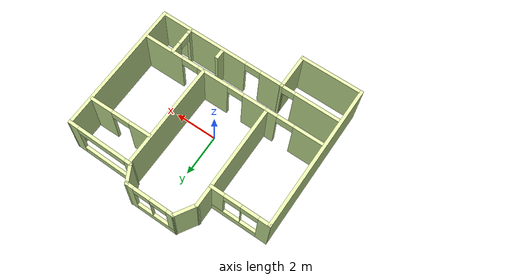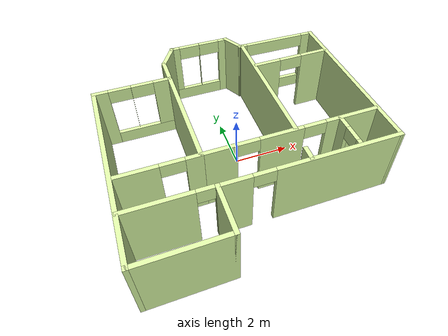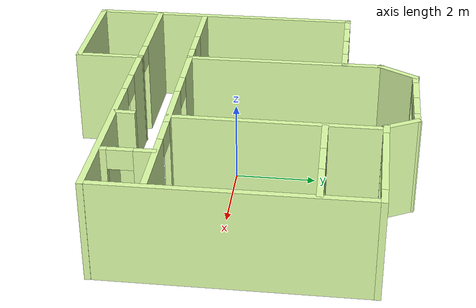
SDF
<?xml version="1.0" ?>
<sdf version="1.6">
  <world name="default">
    <include>
      <uri>file:///home/anastasiia/Documents/flat_model/model.sdf</uri>
    </include>
  </world>
</sdf>

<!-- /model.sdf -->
<sdf version='1.7'>
  <model name='flat_model'>
    <pose>0.096668 0.042419 0 0 -0 0</pose>
    <link name='Wall_100'>
      <collision name='Wall_100_Collision'>
        <geometry>
          <box>
            <size>0.555985 0.15 2.5</size>
          </box>
        </geometry>
        <pose>0 0 1.25 0 -0 0</pose>
      </collision>
      <visual name='Wall_100_Visual'>
        <pose>0 0 1.25 0 -0 0</pose>
        <geometry>
          <box>
            <size>0.555985 0.15 2.5</size>
          </box>
        </geometry>
        <material>
          <script>
            <uri>file://media/materials/scripts/gazebo.material</uri>
            <name>Gazebo/Grey</name>
          </script>
          <ambient>0.866667 1 0.654902 1</ambient>
        </material>
        <meta>
          <layer>0</layer>
        </meta>
      </visual>
      <pose>1.34572 -2.52518 0 0 -0 -1.58488</pose>
    </link>
    <link name='Wall_102'>
      <pose>-3.05371 -2.7276 0 0 -0 3.13689</pose>
      <visual name='Wall_102_Visual_0'>
        <pose>-1.41897 0 1.25 0 -0 0</pose>
        <geometry>
          <box>
            <size>0.106546 0.15 2.5</size>
          </box>
        </geometry>
        <material>
          <script>
            <uri>file://media/materials/scripts/gazebo.material</uri>
            <name>Gazebo/Grey</name>
          </script>
          <ambient>0.866667 1 0.654902 1</ambient>
        </material>
        <meta>
          <layer>0</layer>
        </meta>
      </visual>
      <collision name='Wall_102_Collision_0'>
        <geometry>
          <box>
            <size>0.106546 0.15 2.5</size>
          </box>
        </geometry>
        <pose>-1.41897 0 1.25 0 -0 0</pose>
      </collision>
      <visual name='Wall_102_Visual_1'>
        <pose>0.345424 0 1.25 0 -0 0</pose>
        <geometry>
          <box>
            <size>2.25363 0.15 2.5</size>
          </box>
        </geometry>
        <material>
          <script>
            <uri>file://media/materials/scripts/gazebo.material</uri>
            <name>Gazebo/Grey</name>
          </script>
          <ambient>0.866667 1 0.654902 1</ambient>
        </material>
        <meta>
          <layer>0</layer>
        </meta>
      </visual>
      <collision name='Wall_102_Collision_1'>
        <geometry>
          <box>
            <size>2.25363 0.15 2.5</size>
          </box>
        </geometry>
        <pose>0.345424 0 1.25 0 -0 0</pose>
      </collision>
      <visual name='Wall_102_Visual_2'>
        <pose>-1.07354 0 2.25 0 -0 0</pose>
        <geometry>
          <box>
            <size>0.584303 0.15 0.5</size>
          </box>
        </geometry>
        <material>
          <script>
            <uri>file://media/materials/scripts/gazebo.material</uri>
            <name>Gazebo/Grey</name>
          </script>
          <ambient>0.866667 1 0.654902 1</ambient>
        </material>
        <meta>
          <layer>0</layer>
        </meta>
      </visual>
      <collision name='Wall_102_Collision_2'>
        <geometry>
          <box>
            <size>0.584303 0.15 0.5</size>
          </box>
        </geometry>
        <pose>-1.07354 0 2.25 0 -0 0</pose>
      </collision>
    </link>
    <link name='Wall_62'>
      <collision name='Wall_62_Collision'>
        <geometry>
          <box>
            <size>7 0.15 2.5</size>
          </box>
        </geometry>
        <pose>0 0 1.25 0 -0 0</pose>
      </collision>
      <visual name='Wall_62_Visual'>
        <pose>0 0 1.25 0 -0 0</pose>
        <geometry>
          <box>
            <size>7 0.15 2.5</size>
          </box>
        </geometry>
        <material>
          <script>
            <uri>file://media/materials/scripts/gazebo.material</uri>
            <name>Gazebo/Grey</name>
          </script>
          <ambient>0.866667 1 0.654902 1</ambient>
        </material>
        <meta>
          <layer>0</layer>
        </meta>
      </visual>
      <pose>-4.48201 -0.921322 0 0 -0 -1.5708</pose>
    </link>
    <link name='Wall_63'>
      <collision name='Wall_63_Collision'>
        <geometry>
          <box>
            <size>3 0.15 2.5</size>
          </box>
        </geometry>
        <pose>0 0 1.25 0 -0 0</pose>
      </collision>
      <visual name='Wall_63_Visual'>
        <pose>0 0 1.25 0 -0 0</pose>
        <geometry>
          <box>
            <size>3 0.15 2.5</size>
          </box>
        </geometry>
        <material>
          <script>
            <uri>file://media/materials/scripts/gazebo.material</uri>
            <name>Gazebo/Grey</name>
          </script>
          <ambient>0.866667 1 0.654902 1</ambient>
        </material>
        <meta>
          <layer>0</layer>
        </meta>
      </visual>
      <pose>-3.05701 -4.34632 0 0 -0 0</pose>
    </link>
    <link name='Wall_64'>
      <collision name='Wall_64_Collision'>
        <geometry>
          <box>
            <size>1.75 0.15 2.5</size>
          </box>
        </geometry>
        <pose>0 0 1.25 0 -0 0</pose>
      </collision>
      <visual name='Wall_64_Visual'>
        <pose>0 0 1.25 0 -0 0</pose>
        <geometry>
          <box>
            <size>1.75 0.15 2.5</size>
          </box>
        </geometry>
        <material>
          <script>
            <uri>file://media/materials/scripts/gazebo.material</uri>
            <name>Gazebo/Grey</name>
          </script>
          <ambient>0.866667 1 0.654902 1</ambient>
        </material>
        <meta>
          <layer>0</layer>
        </meta>
      </visual>
      <pose>-1.63201 -3.54632 0 0 -0 1.5708</pose>
    </link>
    <link name='Wall_65'>
      <pose>1.4246 -2.76285 0 0 -0 -0.005408</pose>
      <visual name='Wall_65_Visual_0'>
        <pose>-2.55762 0 1.25 0 -0 0</pose>
        <geometry>
          <box>
            <size>1.14808 0.15 2.5</size>
          </box>
        </geometry>
        <material>
          <script>
            <uri>file://media/materials/scripts/gazebo.material</uri>
            <name>Gazebo/Grey</name>
          </script>
          <ambient>0.866667 1 0.654902 1</ambient>
        </material>
        <meta>
          <layer>0</layer>
        </meta>
      </visual>
      <collision name='Wall_65_Collision_0'>
        <geometry>
          <box>
            <size>1.14808 0.15 2.5</size>
          </box>
        </geometry>
        <pose>-2.55762 0 1.25 0 -0 0</pose>
      </collision>
      <visual name='Wall_65_Visual_1'>
        <pose>0.945434 0 1.25 0 -0 0</pose>
        <geometry>
          <box>
            <size>4.37245 0.15 2.5</size>
          </box>
        </geometry>
        <material>
          <script>
            <uri>file://media/materials/scripts/gazebo.material</uri>
            <name>Gazebo/Grey</name>
          </script>
          <ambient>0.866667 1 0.654902 1</ambient>
        </material>
        <meta>
          <layer>0</layer>
        </meta>
      </visual>
      <collision name='Wall_65_Collision_1'>
        <geometry>
          <box>
            <size>4.37245 0.15 2.5</size>
          </box>
        </geometry>
        <pose>0.945434 0 1.25 0 -0 0</pose>
      </collision>
      <visual name='Wall_65_Visual_2'>
        <pose>-1.61218 0 2.25 0 -0 0</pose>
        <geometry>
          <box>
            <size>0.742786 0.15 0.5</size>
          </box>
        </geometry>
        <material>
          <script>
            <uri>file://media/materials/scripts/gazebo.material</uri>
            <name>Gazebo/Grey</name>
          </script>
          <ambient>0.866667 1 0.654902 1</ambient>
        </material>
        <meta>
          <layer>0</layer>
        </meta>
      </visual>
      <collision name='Wall_65_Collision_2'>
        <geometry>
          <box>
            <size>0.742786 0.15 0.5</size>
          </box>
        </geometry>
        <pose>-1.61218 0 2.25 0 -0 0</pose>
      </collision>
    </link>
    <link name='Wall_66'>
      <collision name='Wall_66_Collision'>
        <geometry>
          <box>
            <size>6.5 0.15 2.5</size>
          </box>
        </geometry>
        <pose>0 0 1.25 0 -0 0</pose>
      </collision>
      <visual name='Wall_66_Visual'>
        <pose>0 0 1.25 0 -0 0</pose>
        <geometry>
          <box>
            <size>6.5 0.15 2.5</size>
          </box>
        </geometry>
        <material>
          <script>
            <uri>file://media/materials/scripts/gazebo.material</uri>
            <name>Gazebo/Grey</name>
          </script>
          <ambient>0.866667 1 0.654902 1</ambient>
        </material>
        <meta>
          <layer>0</layer>
        </meta>
      </visual>
      <pose>4.4746 0.395616 0 0 -0 1.5708</pose>
    </link>
    <link name='Wall_67'>
      <pose>2.9246 3.58715 0 0 -0 3.13097</pose>
      <visual name='Wall_67_Visual_0'>
        <pose>-1.37519 0 1.25 0 -0 0</pose>
        <geometry>
          <box>
            <size>0.513019 0.15 2.5</size>
          </box>
        </geometry>
        <material>
          <script>
            <uri>file://media/materials/scripts/gazebo.material</uri>
            <name>Gazebo/Grey</name>
          </script>
          <ambient>0.866667 1 0.654902 1</ambient>
        </material>
        <meta>
          <layer>0</layer>
        </meta>
      </visual>
      <collision name='Wall_67_Collision_0'>
        <geometry>
          <box>
            <size>0.513019 0.15 2.5</size>
          </box>
        </geometry>
        <pose>-1.37519 0 1.25 0 -0 0</pose>
      </collision>
      <visual name='Wall_67_Visual_1'>
        <pose>0.256509 0 0.25 0 -0 0</pose>
        <geometry>
          <box>
            <size>2.75038 0.15 0.5</size>
          </box>
        </geometry>
        <material>
          <script>
            <uri>file://media/materials/scripts/gazebo.material</uri>
            <name>Gazebo/Grey</name>
          </script>
          <ambient>0.866667 1 0.654902 1</ambient>
        </material>
        <meta>
          <layer>0</layer>
        </meta>
      </visual>
      <collision name='Wall_67_Collision_1'>
        <geometry>
          <box>
            <size>2.75038 0.15 0.5</size>
          </box>
        </geometry>
        <pose>0.256509 0 0.25 0 -0 0</pose>
      </collision>
      <visual name='Wall_67_Visual_2'>
        <pose>1.45151 0 1.5 0 -0 0</pose>
        <geometry>
          <box>
            <size>0.360382 0.15 2</size>
          </box>
        </geometry>
        <material>
          <script>
            <uri>file://media/materials/scripts/gazebo.material</uri>
            <name>Gazebo/Grey</name>
          </script>
          <ambient>0.866667 1 0.654902 1</ambient>
        </material>
        <meta>
          <layer>0</layer>
        </meta>
      </visual>
      <collision name='Wall_67_Collision_2'>
        <geometry>
          <box>
            <size>0.360382 0.15 2</size>
          </box>
        </geometry>
        <pose>1.45151 0 1.5 0 -0 0</pose>
      </collision>
      <visual name='Wall_67_Visual_3'>
        <pose>0.076318 0 2.25 0 -0 0</pose>
        <geometry>
          <box>
            <size>2.39 0.15 0.5</size>
          </box>
        </geometry>
        <material>
          <script>
            <uri>file://media/materials/scripts/gazebo.material</uri>
            <name>Gazebo/Grey</name>
          </script>
          <ambient>0.866667 1 0.654902 1</ambient>
        </material>
        <meta>
          <layer>0</layer>
        </meta>
      </visual>
      <collision name='Wall_67_Collision_3'>
        <geometry>
          <box>
            <size>2.39 0.15 0.5</size>
          </box>
        </geometry>
        <pose>0.076318 0 2.25 0 -0 0</pose>
      </collision>
    </link>
    <link name='Wall_68'>
      <collision name='Wall_68_Collision'>
        <geometry>
          <box>
            <size>0.95923 0.15 2.5</size>
          </box>
        </geometry>
        <pose>0 0 1.25 0 -0 0</pose>
      </collision>
      <visual name='Wall_68_Visual'>
        <pose>0 0 1.25 0 -0 0</pose>
        <geometry>
          <box>
            <size>0.95923 0.15 2.5</size>
          </box>
        </geometry>
        <material>
          <script>
            <uri>file://media/materials/scripts/gazebo.material</uri>
            <name>Gazebo/Grey</name>
          </script>
          <ambient>0.866667 1 0.654902 1</ambient>
        </material>
        <meta>
          <layer>0</layer>
        </meta>
      </visual>
      <pose>1.17826 3.96105 0 0 -0 2.05886</pose>
    </link>
    <link name='Wall_69'>
      <pose>-0.129251 4.31842 0 0 -0 3.14159</pose>
      <visual name='Wall_69_Visual_0'>
        <pose>-0.988603 0 1.25 0 -0 0</pose>
        <geometry>
          <box>
            <size>0.408348 0.15 2.5</size>
          </box>
        </geometry>
        <material>
          <script>
            <uri>file://media/materials/scripts/gazebo.material</uri>
            <name>Gazebo/Grey</name>
          </script>
          <ambient>0.866667 1 0.654902 1</ambient>
        </material>
        <meta>
          <layer>0</layer>
        </meta>
      </visual>
      <collision name='Wall_69_Collision_0'>
        <geometry>
          <box>
            <size>0.408348 0.15 2.5</size>
          </box>
        </geometry>
        <pose>-0.988603 0 1.25 0 -0 0</pose>
      </collision>
      <visual name='Wall_69_Visual_1'>
        <pose>0.204174 0 0.25 0 -0 0</pose>
        <geometry>
          <box>
            <size>1.97721 0.15 0.5</size>
          </box>
        </geometry>
        <material>
          <script>
            <uri>file://media/materials/scripts/gazebo.material</uri>
            <name>Gazebo/Grey</name>
          </script>
          <ambient>0.866667 1 0.654902 1</ambient>
        </material>
        <meta>
          <layer>0</layer>
        </meta>
      </visual>
      <collision name='Wall_69_Collision_1'>
        <geometry>
          <box>
            <size>1.97721 0.15 0.5</size>
          </box>
        </geometry>
        <pose>0.204174 0 0.25 0 -0 0</pose>
      </collision>
      <visual name='Wall_69_Visual_2'>
        <pose>0.017635 0 1.5 0 -0 0</pose>
        <geometry>
          <box>
            <size>0.004129 0.15 2</size>
          </box>
        </geometry>
        <material>
          <script>
            <uri>file://media/materials/scripts/gazebo.material</uri>
            <name>Gazebo/Grey</name>
          </script>
          <ambient>0.866667 1 0.654902 1</ambient>
        </material>
        <meta>
          <layer>0</layer>
        </meta>
      </visual>
      <collision name='Wall_69_Collision_2'>
        <geometry>
          <box>
            <size>0.004129 0.15 2</size>
          </box>
        </geometry>
        <pose>0.017635 0 1.5 0 -0 0</pose>
      </collision>
      <visual name='Wall_69_Visual_3'>
        <pose>1.00624 0 1.5 0 -0 0</pose>
        <geometry>
          <box>
            <size>0.373078 0.15 2</size>
          </box>
        </geometry>
        <material>
          <script>
            <uri>file://media/materials/scripts/gazebo.material</uri>
            <name>Gazebo/Grey</name>
          </script>
          <ambient>0.866667 1 0.654902 1</ambient>
        </material>
        <meta>
          <layer>0</layer>
        </meta>
      </visual>
      <collision name='Wall_69_Collision_3'>
        <geometry>
          <box>
            <size>0.373078 0.15 2</size>
          </box>
        </geometry>
        <pose>1.00624 0 1.5 0 -0 0</pose>
      </collision>
      <visual name='Wall_69_Visual_4'>
        <pose>-0.384429 0 2.25 0 -0 0</pose>
        <geometry>
          <box>
            <size>0.8 0.15 0.5</size>
          </box>
        </geometry>
        <material>
          <script>
            <uri>file://media/materials/scripts/gazebo.material</uri>
            <name>Gazebo/Grey</name>
          </script>
          <ambient>0.866667 1 0.654902 1</ambient>
        </material>
        <meta>
          <layer>0</layer>
        </meta>
      </visual>
      <collision name='Wall_69_Collision_4'>
        <geometry>
          <box>
            <size>0.8 0.15 0.5</size>
          </box>
        </geometry>
        <pose>-0.384429 0 2.25 0 -0 0</pose>
      </collision>
      <visual name='Wall_69_Visual_5'>
        <pose>0.4197 0 2.25 0 -0 0</pose>
        <geometry>
          <box>
            <size>0.8 0.15 0.5</size>
          </box>
        </geometry>
        <material>
          <script>
            <uri>file://media/materials/scripts/gazebo.material</uri>
            <name>Gazebo/Grey</name>
          </script>
          <ambient>0.866667 1 0.654902 1</ambient>
        </material>
        <meta>
          <layer>0</layer>
        </meta>
      </visual>
      <collision name='Wall_69_Collision_5'>
        <geometry>
          <box>
            <size>0.8 0.15 0.5</size>
          </box>
        </geometry>
        <pose>0.4197 0 2.25 0 -0 0</pose>
      </collision>
    </link>
    <link name='Wall_70'>
      <collision name='Wall_70_Collision'>
        <geometry>
          <box>
            <size>1.14683 0.15 2.5</size>
          </box>
        </geometry>
        <pose>0 0 1.25 0 -0 0</pose>
      </collision>
      <visual name='Wall_70_Visual'>
        <pose>0 0 1.25 0 -0 0</pose>
        <geometry>
          <box>
            <size>1.14683 0.15 2.5</size>
          </box>
        </geometry>
        <material>
          <script>
            <uri>file://media/materials/scripts/gazebo.material</uri>
            <name>Gazebo/Grey</name>
          </script>
          <ambient>0.866667 1 0.654902 1</ambient>
        </material>
        <meta>
          <layer>0</layer>
        </meta>
      </visual>
      <pose>-1.50346 3.89104 0 0 -0 -2.11122</pose>
    </link>
    <link name='Wall_71'>
      <collision name='Wall_71_Collision'>
        <geometry>
          <box>
            <size>5.05896 0.15 2.5</size>
          </box>
        </geometry>
        <pose>0 0 1.25 0 -0 0</pose>
      </collision>
      <visual name='Wall_71_Visual'>
        <pose>0 0 1.25 0 -0 0</pose>
        <geometry>
          <box>
            <size>5.05896 0.15 2.5</size>
          </box>
        </geometry>
        <material>
          <script>
            <uri>file://media/materials/scripts/gazebo.material</uri>
            <name>Gazebo/Grey</name>
          </script>
          <ambient>0.866667 1 0.654902 1</ambient>
        </material>
        <meta>
          <layer>0</layer>
        </meta>
      </visual>
      <pose>-1.74984 1.00919 0 0 -0 -1.5667</pose>
    </link>
    <link name='Wall_74'>
      <pose>-3.03978 -1.45533 0 0 -0 3.14159</pose>
      <visual name='Wall_74_Visual_0'>
        <pose>-1.0907 0 1.25 0 -0 0</pose>
        <geometry>
          <box>
            <size>0.568599 0.15 2.5</size>
          </box>
        </geometry>
        <material>
          <script>
            <uri>file://media/materials/scripts/gazebo.material</uri>
            <name>Gazebo/Grey</name>
          </script>
          <ambient>0.866667 1 0.654902 1</ambient>
        </material>
        <meta>
          <layer>0</layer>
        </meta>
      </visual>
      <collision name='Wall_74_Collision_0'>
        <geometry>
          <box>
            <size>0.568599 0.15 2.5</size>
          </box>
        </geometry>
        <pose>-1.0907 0 1.25 0 -0 0</pose>
      </collision>
      <visual name='Wall_74_Visual_1'>
        <pose>0.68363 0 1.25 0 -0 0</pose>
        <geometry>
          <box>
            <size>1.38274 0.15 2.5</size>
          </box>
        </geometry>
        <material>
          <script>
            <uri>file://media/materials/scripts/gazebo.material</uri>
            <name>Gazebo/Grey</name>
          </script>
          <ambient>0.866667 1 0.654902 1</ambient>
        </material>
        <meta>
          <layer>0</layer>
        </meta>
      </visual>
      <collision name='Wall_74_Collision_1'>
        <geometry>
          <box>
            <size>1.38274 0.15 2.5</size>
          </box>
        </geometry>
        <pose>0.68363 0 1.25 0 -0 0</pose>
      </collision>
      <visual name='Wall_74_Visual_2'>
        <pose>-0.407071 0 2.25 0 -0 0</pose>
        <geometry>
          <box>
            <size>0.79866 0.15 0.5</size>
          </box>
        </geometry>
        <material>
          <script>
            <uri>file://media/materials/scripts/gazebo.material</uri>
            <name>Gazebo/Grey</name>
          </script>
          <ambient>0.866667 1 0.654902 1</ambient>
        </material>
        <meta>
          <layer>0</layer>
        </meta>
      </visual>
      <collision name='Wall_74_Collision_2'>
        <geometry>
          <box>
            <size>0.79866 0.15 0.5</size>
          </box>
        </geometry>
        <pose>-0.407071 0 2.25 0 -0 0</pose>
      </collision>
    </link>
    <link name='Wall_78'>
      <pose>-3.13271 2.53356 0 0 -0 0.001845</pose>
      <visual name='Wall_78_Visual_0'>
        <pose>-1.13854 0 1.25 0 -0 0</pose>
        <geometry>
          <box>
            <size>0.567613 0.15 2.5</size>
          </box>
        </geometry>
        <material>
          <script>
            <uri>file://media/materials/scripts/gazebo.material</uri>
            <name>Gazebo/Grey</name>
          </script>
          <ambient>0.866667 1 0.654902 1</ambient>
        </material>
        <meta>
          <layer>0</layer>
        </meta>
      </visual>
      <collision name='Wall_78_Collision_0'>
        <geometry>
          <box>
            <size>0.567613 0.15 2.5</size>
          </box>
        </geometry>
        <pose>-1.13854 0 1.25 0 -0 0</pose>
      </collision>
      <visual name='Wall_78_Visual_1'>
        <pose>0.283806 0 0.25 0 -0 0</pose>
        <geometry>
          <box>
            <size>2.27709 0.15 0.5</size>
          </box>
        </geometry>
        <material>
          <script>
            <uri>file://media/materials/scripts/gazebo.material</uri>
            <name>Gazebo/Grey</name>
          </script>
          <ambient>0.866667 1 0.654902 1</ambient>
        </material>
        <meta>
          <layer>0</layer>
        </meta>
      </visual>
      <collision name='Wall_78_Collision_1'>
        <geometry>
          <box>
            <size>2.27709 0.15 0.5</size>
          </box>
        </geometry>
        <pose>0.283806 0 0.25 0 -0 0</pose>
      </collision>
      <visual name='Wall_78_Visual_2'>
        <pose>-0.051735 0 1.5 0 -0 0</pose>
        <geometry>
          <box>
            <size>0.006006 0.15 2</size>
          </box>
        </geometry>
        <material>
          <script>
            <uri>file://media/materials/scripts/gazebo.material</uri>
            <name>Gazebo/Grey</name>
          </script>
          <ambient>0.866667 1 0.654902 1</ambient>
        </material>
        <meta>
          <layer>0</layer>
        </meta>
      </visual>
      <collision name='Wall_78_Collision_2'>
        <geometry>
          <box>
            <size>0.006006 0.15 2</size>
          </box>
        </geometry>
        <pose>-0.051735 0 1.5 0 -0 0</pose>
      </collision>
      <visual name='Wall_78_Visual_3'>
        <pose>1.08681 0 1.5 0 -0 0</pose>
        <geometry>
          <box>
            <size>0.671083 0.15 2</size>
          </box>
        </geometry>
        <material>
          <script>
            <uri>file://media/materials/scripts/gazebo.material</uri>
            <name>Gazebo/Grey</name>
          </script>
          <ambient>0.866667 1 0.654902 1</ambient>
        </material>
        <meta>
          <layer>0</layer>
        </meta>
      </visual>
      <collision name='Wall_78_Collision_3'>
        <geometry>
          <box>
            <size>0.671083 0.15 2</size>
          </box>
        </geometry>
        <pose>1.08681 0 1.5 0 -0 0</pose>
      </collision>
      <visual name='Wall_78_Visual_4'>
        <pose>-0.454738 0 2.25 0 -0 0</pose>
        <geometry>
          <box>
            <size>0.8 0.15 0.5</size>
          </box>
        </geometry>
        <material>
          <script>
            <uri>file://media/materials/scripts/gazebo.material</uri>
            <name>Gazebo/Grey</name>
          </script>
          <ambient>0.866667 1 0.654902 1</ambient>
        </material>
        <meta>
          <layer>0</layer>
        </meta>
      </visual>
      <collision name='Wall_78_Collision_4'>
        <geometry>
          <box>
            <size>0.8 0.15 0.5</size>
          </box>
        </geometry>
        <pose>-0.454738 0 2.25 0 -0 0</pose>
      </collision>
      <visual name='Wall_78_Visual_5'>
        <pose>0.351268 0 2.25 0 -0 0</pose>
        <geometry>
          <box>
            <size>0.8 0.15 0.5</size>
          </box>
        </geometry>
        <material>
          <script>
            <uri>file://media/materials/scripts/gazebo.material</uri>
            <name>Gazebo/Grey</name>
          </script>
          <ambient>0.866667 1 0.654902 1</ambient>
        </material>
        <meta>
          <layer>0</layer>
        </meta>
      </visual>
      <collision name='Wall_78_Collision_5'>
        <geometry>
          <box>
            <size>0.8 0.15 0.5</size>
          </box>
        </geometry>
        <pose>0.351268 0 2.25 0 -0 0</pose>
      </collision>
    </link>
    <link name='Wall_87'>
      <collision name='Wall_87_Collision'>
        <geometry>
          <box>
            <size>5.17235 0.15 2.5</size>
          </box>
        </geometry>
        <pose>0 0 1.25 0 -0 0</pose>
      </collision>
      <visual name='Wall_87_Visual'>
        <pose>0 0 1.25 0 -0 0</pose>
        <geometry>
          <box>
            <size>5.17235 0.15 2.5</size>
          </box>
        </geometry>
        <material>
          <script>
            <uri>file://media/materials/scripts/gazebo.material</uri>
            <name>Gazebo/Grey</name>
          </script>
          <ambient>0.866667 1 0.654902 1</ambient>
        </material>
        <meta>
          <layer>0</layer>
        </meta>
      </visual>
      <pose>1.43672 1.08795 0 0 -0 -1.57425</pose>
    </link>
    <link name='Wall_90'>
      <pose>2.96267 2.22496 0 0 -0 0.011952</pose>
      <visual name='Wall_90_Visual_0'>
        <pose>-0.988405 0 1.25 0 -0 0</pose>
        <geometry>
          <box>
            <size>1.0599 0.15 2.5</size>
          </box>
        </geometry>
        <material>
          <script>
            <uri>file://media/materials/scripts/gazebo.material</uri>
            <name>Gazebo/Grey</name>
          </script>
          <ambient>0.866667 1 0.654902 1</ambient>
        </material>
        <meta>
          <layer>0</layer>
        </meta>
      </visual>
      <collision name='Wall_90_Collision_0'>
        <geometry>
          <box>
            <size>1.0599 0.15 2.5</size>
          </box>
        </geometry>
        <pose>-0.988405 0 1.25 0 -0 0</pose>
      </collision>
      <visual name='Wall_90_Visual_1'>
        <pose>0.968548 0 1.25 0 -0 0</pose>
        <geometry>
          <box>
            <size>1.09961 0.15 2.5</size>
          </box>
        </geometry>
        <material>
          <script>
            <uri>file://media/materials/scripts/gazebo.material</uri>
            <name>Gazebo/Grey</name>
          </script>
          <ambient>0.866667 1 0.654902 1</ambient>
        </material>
        <meta>
          <layer>0</layer>
        </meta>
      </visual>
      <collision name='Wall_90_Collision_1'>
        <geometry>
          <box>
            <size>1.09961 0.15 2.5</size>
          </box>
        </geometry>
        <pose>0.968548 0 1.25 0 -0 0</pose>
      </collision>
      <visual name='Wall_90_Visual_2'>
        <pose>-0.019857 0 2.25 0 -0 0</pose>
        <geometry>
          <box>
            <size>0.8772 0.15 0.5</size>
          </box>
        </geometry>
        <material>
          <script>
            <uri>file://media/materials/scripts/gazebo.material</uri>
            <name>Gazebo/Grey</name>
          </script>
          <ambient>0.866667 1 0.654902 1</ambient>
        </material>
        <meta>
          <layer>0</layer>
        </meta>
      </visual>
      <collision name='Wall_90_Collision_2'>
        <geometry>
          <box>
            <size>0.8772 0.15 0.5</size>
          </box>
        </geometry>
        <pose>-0.019857 0 2.25 0 -0 0</pose>
      </collision>
    </link>
    <link name='Wall_96'>
      <pose>1.35506 -1.44682 0 0 -0 0.001901</pose>
      <visual name='Wall_96_Visual_0'>
        <pose>-2.52094 0 1.25 0 -0 0</pose>
        <geometry>
          <box>
            <size>1.19148 0.15 2.5</size>
          </box>
        </geometry>
        <material>
          <script>
            <uri>file://media/materials/scripts/gazebo.material</uri>
            <name>Gazebo/Grey</name>
          </script>
          <ambient>0.866667 1 0.654902 1</ambient>
        </material>
        <meta>
          <layer>0</layer>
        </meta>
      </visual>
      <collision name='Wall_96_Collision_0'>
        <geometry>
          <box>
            <size>1.19148 0.15 2.5</size>
          </box>
        </geometry>
        <pose>-2.52094 0 1.25 0 -0 0</pose>
      </collision>
      <visual name='Wall_96_Visual_1'>
        <pose>-0.405579 0 1.25 0 -0 0</pose>
        <geometry>
          <box>
            <size>1.53649 0.15 2.5</size>
          </box>
        </geometry>
        <material>
          <script>
            <uri>file://media/materials/scripts/gazebo.material</uri>
            <name>Gazebo/Grey</name>
          </script>
          <ambient>0.866667 1 0.654902 1</ambient>
        </material>
        <meta>
          <layer>0</layer>
        </meta>
      </visual>
      <collision name='Wall_96_Collision_1'>
        <geometry>
          <box>
            <size>1.53649 0.15 2.5</size>
          </box>
        </geometry>
        <pose>-0.405579 0 1.25 0 -0 0</pose>
      </collision>
      <visual name='Wall_96_Visual_2'>
        <pose>2.13965 0 1.25 0 -0 0</pose>
        <geometry>
          <box>
            <size>1.95407 0.15 2.5</size>
          </box>
        </geometry>
        <material>
          <script>
            <uri>file://media/materials/scripts/gazebo.material</uri>
            <name>Gazebo/Grey</name>
          </script>
          <ambient>0.866667 1 0.654902 1</ambient>
        </material>
        <meta>
          <layer>0</layer>
        </meta>
      </visual>
      <collision name='Wall_96_Collision_2'>
        <geometry>
          <box>
            <size>1.95407 0.15 2.5</size>
          </box>
        </geometry>
        <pose>2.13965 0 1.25 0 -0 0</pose>
      </collision>
      <visual name='Wall_96_Visual_3'>
        <pose>-1.54951 0 2.25 0 -0 0</pose>
        <geometry>
          <box>
            <size>0.751372 0.15 0.5</size>
          </box>
        </geometry>
        <material>
          <script>
            <uri>file://media/materials/scripts/gazebo.material</uri>
            <name>Gazebo/Grey</name>
          </script>
          <ambient>0.866667 1 0.654902 1</ambient>
        </material>
        <meta>
          <layer>0</layer>
        </meta>
      </visual>
      <collision name='Wall_96_Collision_3'>
        <geometry>
          <box>
            <size>0.751372 0.15 0.5</size>
          </box>
        </geometry>
        <pose>-1.54951 0 2.25 0 -0 0</pose>
      </collision>
      <visual name='Wall_96_Visual_4'>
        <pose>0.762641 0 2.25 0 -0 0</pose>
        <geometry>
          <box>
            <size>0.799943 0.15 0.5</size>
          </box>
        </geometry>
        <material>
          <script>
            <uri>file://media/materials/scripts/gazebo.material</uri>
            <name>Gazebo/Grey</name>
          </script>
          <ambient>0.866667 1 0.654902 1</ambient>
        </material>
        <meta>
          <layer>0</layer>
        </meta>
      </visual>
      <collision name='Wall_96_Collision_4'>
        <geometry>
          <box>
            <size>0.799943 0.15 0.5</size>
          </box>
        </geometry>
        <pose>0.762641 0 2.25 0 -0 0</pose>
      </collision>
    </link>
    <link name='Wall_98'>
      <pose>3.04954 -2.09636 0 0 -0 -1.56619</pose>
      <visual name='Wall_98_Visual_0'>
        <pose>-0.425881 0 1.25 0 -0 0</pose>
        <geometry>
          <box>
            <size>0.538955 0.15 2.5</size>
          </box>
        </geometry>
        <material>
          <script>
            <uri>file://media/materials/scripts/gazebo.material</uri>
            <name>Gazebo/Grey</name>
          </script>
          <ambient>0.866667 1 0.654902 1</ambient>
        </material>
        <meta>
          <layer>0</layer>
        </meta>
      </visual>
      <collision name='Wall_98_Collision_0'>
        <geometry>
          <box>
            <size>0.538955 0.15 2.5</size>
          </box>
        </geometry>
        <pose>-0.425881 0 1.25 0 -0 0</pose>
      </collision>
      <visual name='Wall_98_Visual_1'>
        <pose>0.571591 0 1.25 0 -0 0</pose>
        <geometry>
          <box>
            <size>0.247536 0.15 2.5</size>
          </box>
        </geometry>
        <material>
          <script>
            <uri>file://media/materials/scripts/gazebo.material</uri>
            <name>Gazebo/Grey</name>
          </script>
          <ambient>0.866667 1 0.654902 1</ambient>
        </material>
        <meta>
          <layer>0</layer>
        </meta>
      </visual>
      <collision name='Wall_98_Collision_1'>
        <geometry>
          <box>
            <size>0.247536 0.15 2.5</size>
          </box>
        </geometry>
        <pose>0.571591 0 1.25 0 -0 0</pose>
      </collision>
      <visual name='Wall_98_Visual_2'>
        <pose>0.145709 0 2.25 0 -0 0</pose>
        <geometry>
          <box>
            <size>0.604227 0.15 0.5</size>
          </box>
        </geometry>
        <material>
          <script>
            <uri>file://media/materials/scripts/gazebo.material</uri>
            <name>Gazebo/Grey</name>
          </script>
          <ambient>0.866667 1 0.654902 1</ambient>
        </material>
        <meta>
          <layer>0</layer>
        </meta>
      </visual>
      <collision name='Wall_98_Collision_2'>
        <geometry>
          <box>
            <size>0.604227 0.15 0.5</size>
          </box>
        </geometry>
        <pose>0.145709 0 2.25 0 -0 0</pose>
      </collision>
    </link>
    <static>1</static>
  </model>
</sdf>
